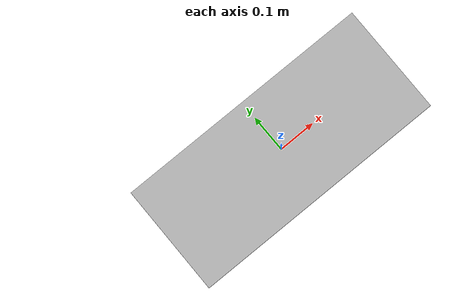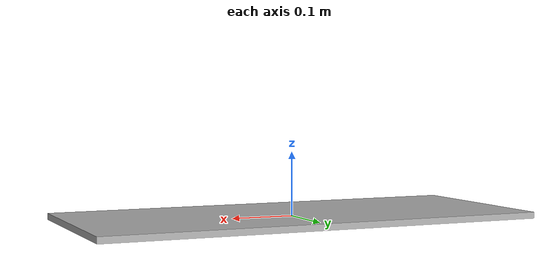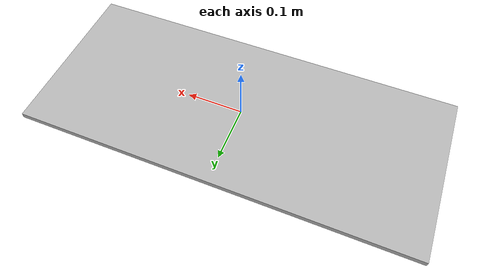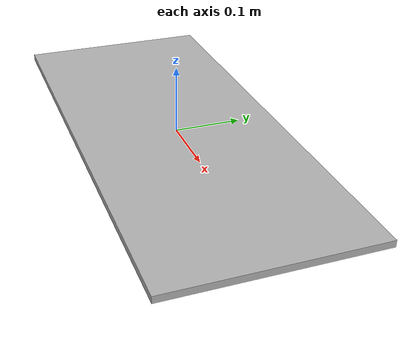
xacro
<?xml version="1.0" ?>
<robot name="test_robot" xmlns:xacro="http://www.ros.org/wiki/xacro">

    <material name="silver">
		<color rgba="0.700 0.700 0.700 1.000"/>
	</material>

    <link name="base_link">
        <visual>
            <origin xyz="0 0 0" rpy="0 0 0"/>
            <geometry>
                <box size="0.70 0.30 0.01"/>
            </geometry>
            <material name="silver">
                <color rgba="0.700 0.700 0.700 1.000"/>
            </material>
        </visual>
    </link>

</robot>
